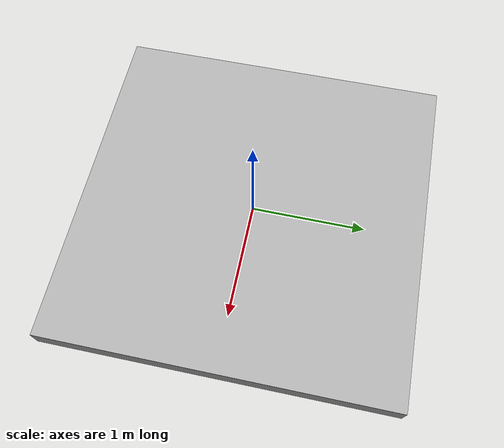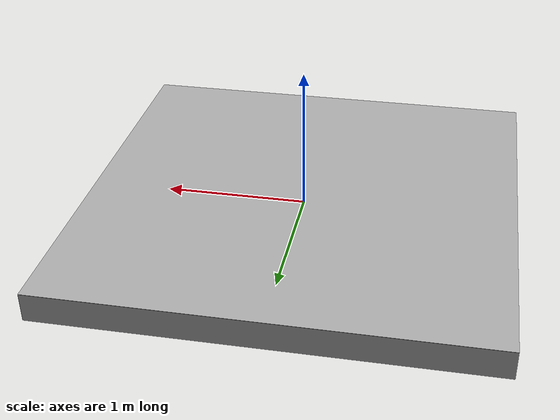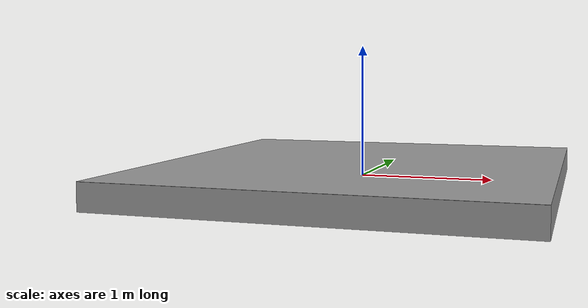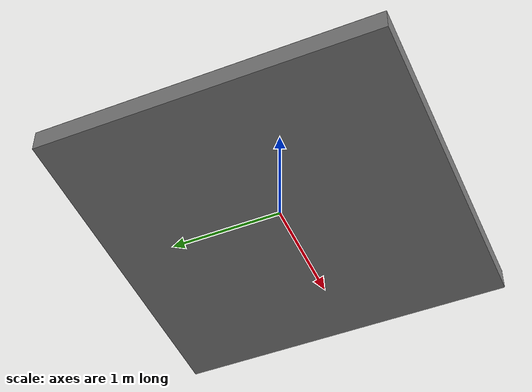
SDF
<?xml version='1.0'?>
<sdf version="1.9">
  <model name="box_with_image">
    <static>true</static>

    <link name="base_link">

      <visual name="box">
        <geometry>
          <box>
          <size>3 3 0.2</size>
          </box>
        </geometry>
        <material>
          <ambient>0.5 0.5 0.5 1</ambient>
          <diffuse>0.5 0.5 0.5 1</diffuse>
        </material>
      </visual>

      <visual name="image">
      <pose> 0 0 0.101 0 0 0</pose>
        <geometry>
          <box>
          <size>3 3 0.001</size>
          </box>
        </geometry>
        <material>
          <pbr>
            <metal>
              <albedo_map>materials/textures/logo.png</albedo_map>
            </metal>
          </pbr>
        </material>
      </visual>

      <collision name="base_collision">
        <geometry>
          <box>
          <size>1 1 0.201</size>
          </box>
        </geometry>
      </collision>

<!-- models/box_with_image/materials/textures/runway.png -->

    </link>
  </model>
</sdf>
